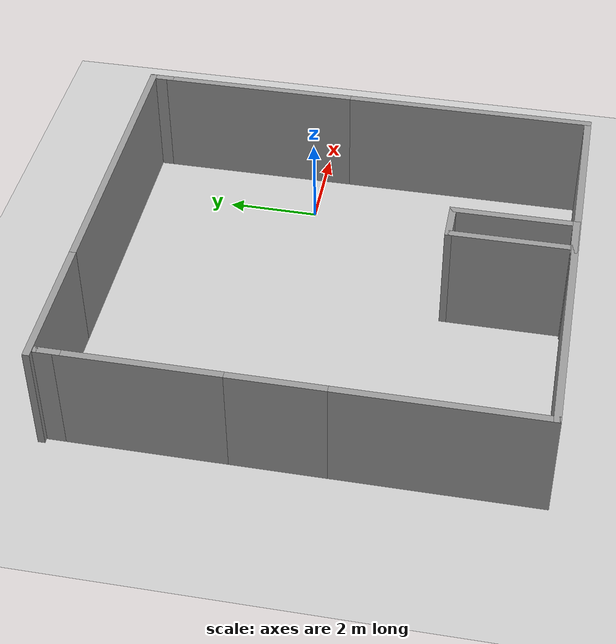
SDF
<sdf version="1.6">
 <world name="default">
  <light name="sun" type="directional">
   <pose>0 0 10 0 -0 0</pose>
   <diffuse>0.8 0.8 0.8 1</diffuse>
   <specular>0.1 0.1 0.1 1</specular>
   <attenuation>
    <range>1000</range>
    <constant>0.9</constant>
    <linear>0.01</linear>
    <quadratic>0.001</quadratic>
   </attenuation>
   <direction>-0.5 0.5 -1</direction>
  </light>
  <model name="ground_plane">
   <static>1</static>
   <link name="link">
    <collision name="collision">
     <geometry><plane><normal>0 0 1</normal><size>100 100</size></plane></geometry>
     <surface><friction><ode><mu>100</mu><mu2>50</mu2></ode></friction></surface>
    </collision>
    <visual name="visual">
     <cast_shadows>0</cast_shadows>
     <geometry><plane><normal>0 0 1</normal><size>100 100</size></plane></geometry>
     <material>
      <script><uri>file://media/materials/scripts/gazebo.material</uri><name>Gazebo/Grey</name></script>
     </material>
    </visual>
   </link>
  </model>
  <gravity>0 0 -9.8</gravity>
  <magnetic_field>6e-06 2.3e-05 -4.2e-05</magnetic_field>
  <atmosphere type="adiabatic"/>
  <physics name="default_physics" default="0" type="ode">
   <max_step_size>0.001</max_step_size>
   <real_time_factor>1</real_time_factor>
   <real_time_update_rate>1000</real_time_update_rate>
  </physics>
  <scene><ambient>0.4 0.4 0.4 1</ambient><background>0.7 0.7 0.7 1</background><shadows>1</shadows></scene>
  <spherical_coordinates>
   <surface_model>EARTH_WGS84</surface_model>
   <latitude_deg>0</latitude_deg>
   <longitude_deg>0</longitude_deg>
   <elevation>0</elevation>
   <heading_deg>0</heading_deg>
  </spherical_coordinates>
  <model name="Walls">
   <pose>-3.27461 -0.97488 0 0 -0 0</pose>
   <link name="Wall_106">
    <collision name="Wall_106_Collision">
     <geometry><box><size>3 0.15 2.5</size></box></geometry>
     <pose>0 0 1.25 0 -0 0</pose>
    </collision>
    <visual name="Wall_106_Visual">
     <pose>0 0 1.25 0 -0 0</pose>
     <geometry><box><size>3 0.15 2.5</size></box></geometry>
     <material>
      <script><uri>file://media/materials/scripts/gazebo.material</uri><name>Gazebo/Grey</name></script>
      <ambient>1 1 1 1</ambient>
     </material>
    </visual>
    <pose>-3.18 5.05488 0 0 -0 3.14159</pose>
   </link>
   <link name="Wall_108">
    <collision name="Wall_108_Collision">
     <geometry><box><size>2 0.15 2.5</size></box></geometry>
     <pose>0 0 1.25 0 -0 0</pose>
    </collision>
    <visual name="Wall_108_Visual">
     <pose>0 0 1.25 0 -0 0</pose>
     <geometry><box><size>2 0.15 2.5</size></box></geometry>
     <material>
      <script><uri>file://media/materials/scripts/gazebo.material</uri><name>Gazebo/Grey</name></script>
      <ambient>1 1 1 1</ambient>
     </material>
    </visual>
    <pose>-4.495 0.219878 0 0 -0 1.5708</pose>
   </link>
   <link name="Wall_109">
    <collision name="Wall_109_Collision">
     <geometry><box><size>3.5 0.15 2.5</size></box></geometry>
     <pose>0 0 1.25 0 -0 0</pose>
    </collision>
    <visual name="Wall_109_Visual">
     <pose>0 0 1.25 0 -0 0</pose>
     <geometry><box><size>3.5 0.15 2.5</size></box></geometry>
     <material>
      <script><uri>file://media/materials/scripts/gazebo.material</uri><name>Gazebo/Grey</name></script>
      <ambient>1 1 1 1</ambient>
     </material>
    </visual>
    <pose>-4.495 2.81988 0 0 -0 1.5708</pose>
   </link>
   <link name="Wall_11">
    <collision name="Wall_11_Collision">
     <geometry><box><size>0.560488 0.15 2.5</size></box></geometry>
     <pose>0 0 1.25 0 -0 0</pose>
    </collision>
    <visual name="Wall_11_Visual">
     <pose>0 0 1.25 0 -0 0</pose>
     <geometry><box><size>0.560488 0.15 2.5</size></box></geometry>
     <material>
      <script><uri>file://media/materials/scripts/gazebo.material</uri><name>Gazebo/Grey</name></script>
      <ambient>1 1 1 1</ambient>
     </material>
    </visual>
    <pose>4.605 4.84988 0 0 -0 1.5708</pose>
   </link>
   <link name="Wall_110">
    <collision name="Wall_110_Collision">
     <geometry><box><size>0.55 0.15 2.5</size></box></geometry>
     <pose>0 0 1.25 0 -0 0</pose>
    </collision>
    <visual name="Wall_110_Visual">
     <pose>0 0 1.25 0 -0 0</pose>
     <geometry><box><size>0.55 0.15 2.5</size></box></geometry>
     <material>
      <script><uri>file://media/materials/scripts/gazebo.material</uri><name>Gazebo/Grey</name></script>
      <ambient>1 1 1 1</ambient>
     </material>
    </visual>
    <pose>-4.495 4.69488 0 0 -0 1.5708</pose>
   </link>
   <link name="Wall_12">
    <collision name="Wall_12_Collision">
     <geometry><box><size>6.5 0.15 2.5</size></box></geometry>
     <pose>0 0 1.25 0 -0 0</pose>
    </collision>
    <visual name="Wall_12_Visual">
     <pose>0 0 1.25 0 -0 0</pose>
     <geometry><box><size>6.5 0.15 2.5</size></box></geometry>
     <material>
      <script><uri>file://media/materials/scripts/gazebo.material</uri><name>Gazebo/Grey</name></script>
      <ambient>1 1 1 1</ambient>
     </material>
    </visual>
    <pose>1.42 5.05488 0 0 -0 3.14159</pose>
   </link>
   <link name="Wall_19">
    <collision name="Wall_19_Collision">
     <geometry><box><size>0.15 0.15 2.5</size></box></geometry>
     <pose>0 0 1.25 0 -0 0</pose>
    </collision>
    <visual name="Wall_19_Visual">
     <pose>0 0 1.25 0 -0 0</pose>
     <geometry><box><size>0.15 0.15 2.5</size></box></geometry>
     <material>
      <script><uri>file://media/materials/scripts/gazebo.material</uri><name>Gazebo/Grey</name></script>
      <ambient>1 1 1 1</ambient>
     </material>
    </visual>
    <pose>-4.495 4.89488 0 0 -0 0</pose>
   </link>
   <link name="Wall_2">
    <collision name="Wall_2_Collision">
     <geometry><box><size>4.5 0.15 2.5</size></box></geometry>
     <pose>0 0 1.25 0 -0 0</pose>
    </collision>
    <visual name="Wall_2_Visual">
     <pose>0 0 1.25 0 -0 0</pose>
     <geometry><box><size>4.5 0.15 2.5</size></box></geometry>
     <material>
      <script><uri>file://media/materials/scripts/gazebo.material</uri><name>Gazebo/Grey</name></script>
      <ambient>1 1 1 1</ambient>
     </material>
    </visual>
    <pose>-4.495 -2.88012 0 0 0 -1.5708</pose>
   </link>
   <link name="Wall_3">
    <collision name="Wall_3_Collision">
     <geometry><box><size>9.25 0.15 2.5</size></box></geometry>
     <pose>0 0 1.25 0 -0 0</pose>
    </collision>
    <visual name="Wall_3_Visual">
     <pose>0 0 1.25 0 -0 0</pose>
     <geometry><box><size>9.25 0.15 2.5</size></box></geometry>
     <material>
      <script><uri>file://media/materials/scripts/gazebo.material</uri><name>Gazebo/Grey</name></script>
      <ambient>1 1 1 1</ambient>
     </material>
    </visual>
    <pose>0.055 -5.05512 0 0 -0 0</pose>
   </link>
   <link name="Wall_7">
    <collision name="Wall_7_Collision">
     <geometry><box><size>5.5 0.15 2.5</size></box></geometry>
     <pose>0 0 1.25 0 -0 0</pose>
    </collision>
    <visual name="Wall_7_Visual">
     <pose>0 0 1.25 0 -0 0</pose>
     <geometry><box><size>5.5 0.15 2.5</size></box></geometry>
     <material>
      <script><uri>file://media/materials/scripts/gazebo.material</uri><name>Gazebo/Grey</name></script>
      <ambient>1 1 1 1</ambient>
     </material>
    </visual>
    <pose>4.605 -2.38012 0 0 -0 1.5708</pose>
   </link>
   <link name="Wall_9">
    <collision name="Wall_9_Collision">
     <geometry><box><size>4.5 0.15 2.5</size></box></geometry>
     <pose>0 0 1.25 0 -0 0</pose>
    </collision>
    <visual name="Wall_9_Visual">
     <pose>0 0 1.25 0 -0 0</pose>
     <geometry><box><size>4.5 0.15 2.5</size></box></geometry>
     <material>
      <script><uri>file://media/materials/scripts/gazebo.material</uri><name>Gazebo/Grey</name></script>
      <ambient>1 1 1 1</ambient>
     </material>
    </visual>
    <pose>4.605 2.46988 0 0 -0 1.5708</pose>
   </link>
   <static>1</static>
  </model>
  <model name="InnerWall">
   <pose>-2.625 -4.71 0 0 -0 0</pose>
   <link name="Wall_1">
    <collision name="Wall_1_Collision">
     <geometry><box><size>2.75 0.15 2.5</size></box></geometry>
     <pose>0 0 1.25 0 -0 0</pose>
    </collision>
    <visual name="Wall_1_Visual">
     <pose>0 0 1.25 0 -0 0</pose>
     <geometry><box><size>2.75 0.15 2.5</size></box></geometry>
     <material>
      <script><uri>file://media/materials/scripts/gazebo.material</uri><name>Gazebo/Grey</name></script>
      <ambient>1 1 1 1</ambient>
     </material>
    </visual>
    <pose>-0.335 0 0 0 0 -1.5708</pose>
   </link>
   <link name="Wall_3">
    <collision name="Wall_3_Collision">
     <geometry><box><size>1 0.15 2.5</size></box></geometry>
     <pose>0 0 1.25 0 -0 0</pose>
    </collision>
    <visual name="Wall_3_Visual">
     <pose>0 0 1.25 0 -0 0</pose>
     <geometry><box><size>1 0.15 2.5</size></box></geometry>
     <material>
      <script><uri>file://media/materials/scripts/gazebo.material</uri><name>Gazebo/Grey</name></script>
      <ambient>1 1 1 1</ambient>
     </material>
    </visual>
    <pose>0 -1.3 0 0 -0 0</pose>
   </link>
   <link name="Wall_4">
    <collision name="Wall_4_Collision">
     <geometry><box><size>2.75 0.15 2.5</size></box></geometry>
     <pose>0 0 1.25 0 -0 0</pose>
    </collision>
    <visual name="Wall_4_Visual">
     <pose>0 0 1.25 0 -0 0</pose>
     <geometry><box><size>2.75 0.15 2.5</size></box></geometry>
     <material>
      <script><uri>file://media/materials/scripts/gazebo.material</uri><name>Gazebo/Grey</name></script>
      <ambient>1 1 1 1</ambient>
     </material>
    </visual>
    <pose>0.425 0 0 0 -0 1.5708</pose>
   </link>
   <link name="Wall_7">
    <collision name="Wall_7_Collision">
     <geometry><box><size>0.91 0.15 2.5</size></box></geometry>
     <pose>0 0 1.25 0 -0 0</pose>
    </collision>
    <visual name="Wall_7_Visual">
     <pose>0 0 1.25 0 -0 0</pose>
     <geometry><box><size>0.91 0.15 2.5</size></box></geometry>
     <material>
      <script><uri>file://media/materials/scripts/gazebo.material</uri><name>Gazebo/Grey</name></script>
      <ambient>1 1 1 1</ambient>
     </material>
    </visual>
    <pose>0.045 1.3 0 0 -0 3.14159</pose>
   </link>
   <static>1</static>
  </model>
 </world>
</sdf>
